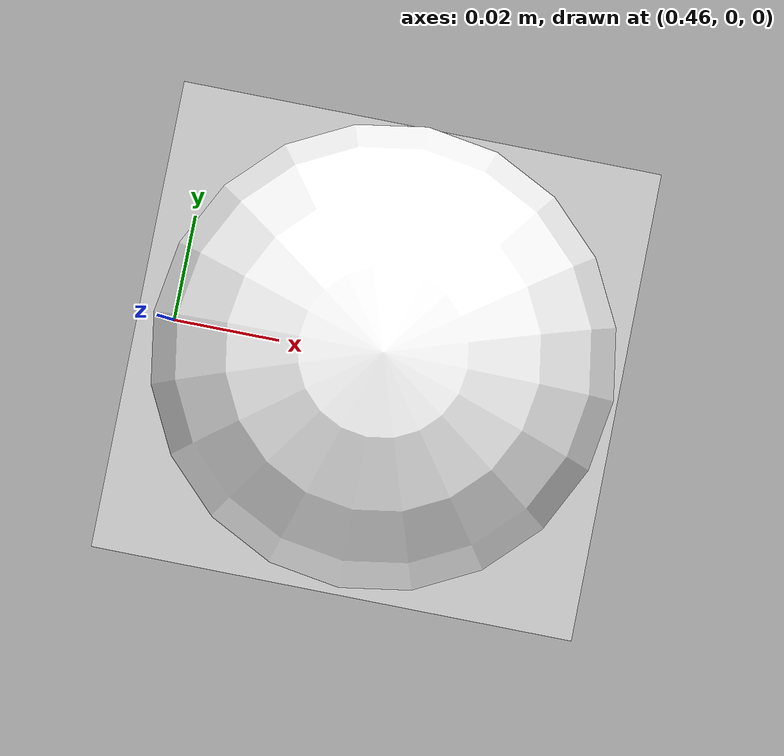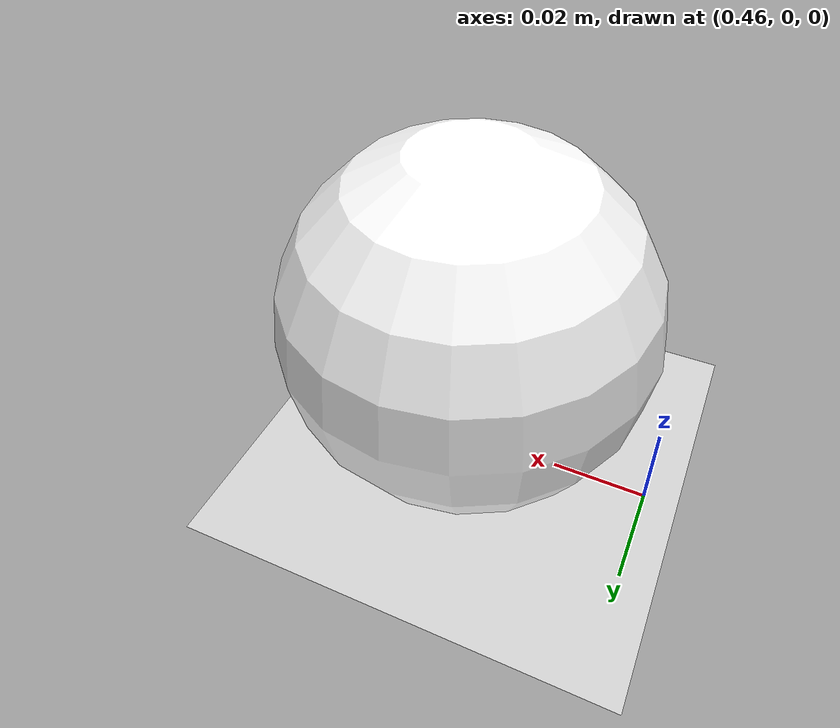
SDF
<?xml version="1.0" ?>
<sdf version="1.5">
  <world name="default">
    <!-- A global light source -->
    <include>
      <uri>model://sun</uri>
    </include>
    <!-- A ground plane -->
    <include>
      <uri>model://ground_plane</uri>
    </include>
    <!-- A red ball -->
    <include>
      <uri>model://cricket_ball</uri>
      <name>cricket_ball</name>
      <pose>0.5 0 0 0 0 0</pose>
    </include>
  </world>
</sdf>

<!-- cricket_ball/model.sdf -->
<sdf version="1.5">
  <model name="cricket_ball">
    <link name="link">
      <pose>0 0 0.0375 0 0 0</pose>
      <inertial>
        <mass>0.1467</mass>
        <inertia>
          <ixx>8.251875e-05</ixx>
          <ixy>0</ixy>
          <ixz>0</ixz>
          <iyy>8.251875e-05</iyy>
          <iyz>0</iyz>
          <izz>8.251875e-05</izz>
        </inertia>
      </inertial>

      <collision name="collision">
        <geometry>
          <sphere>
            <radius>0.0375</radius>
          </sphere>
        </geometry>
        <surface>
          <contact>
            <!-- Red Pine coefficients for longitudinal axis of the wood
                 according to:
                 http://www.fpl.fs.fed.us/documnts/fplgtr/fplgtr113/ch04.pdf -->
            <poissons_ratio>0.347</poissons_ratio>
            <elastic_modulus>8.8e+09</elastic_modulus>
            <ode>
              <kp>100000</kp>
              <kd>100</kd>
              <max_vel>100.0</max_vel>
              <min_depth>0.001</min_depth>
            </ode>
          </contact>
          <friction>
            <torsional>
              <coefficient>1.0</coefficient>
              <use_patch_radius>0</use_patch_radius>
              <surface_radius>0.01</surface_radius>
            </torsional>
          </friction>
        </surface>
      </collision>

      <visual name="visual">
        <geometry>
          <sphere>
            <radius>0.0375</radius>
          </sphere>
        </geometry>
        <material><diffuse>1 1 1 1</diffuse><specular>0.1 0.1 0.1 1</specular></material>
      </visual>

      <!-- approximate rolling friction -->
      <velocity_decay>
        <linear>0.00</linear>
        <angular>0.005</angular>
      </velocity_decay>
    </link>
  </model>
</sdf>
